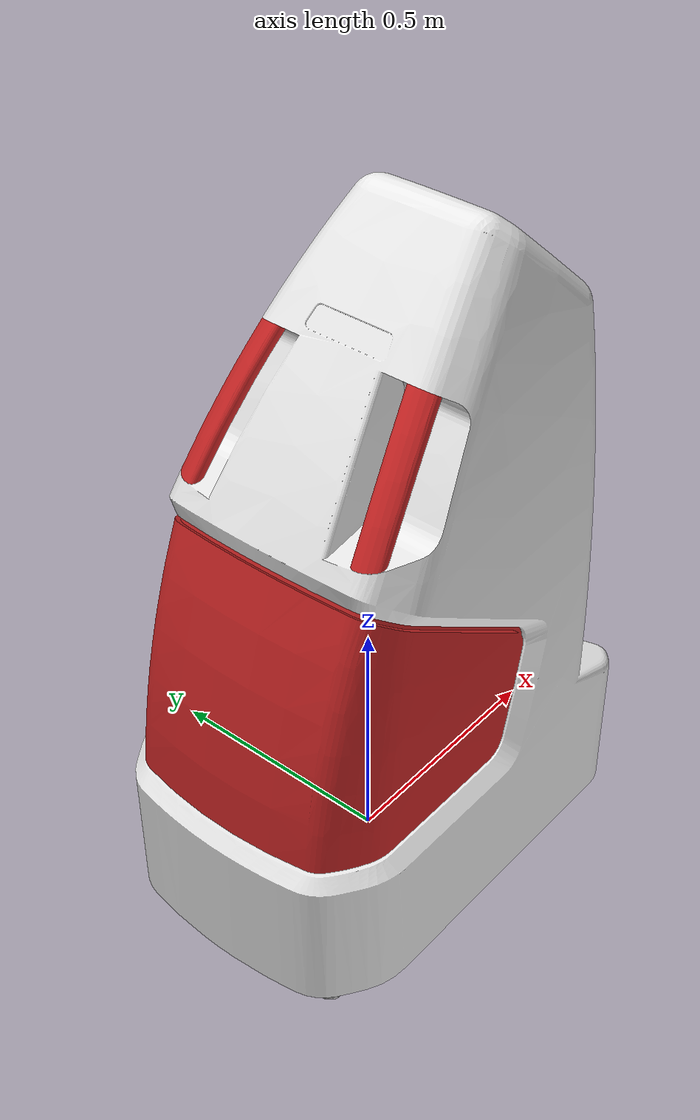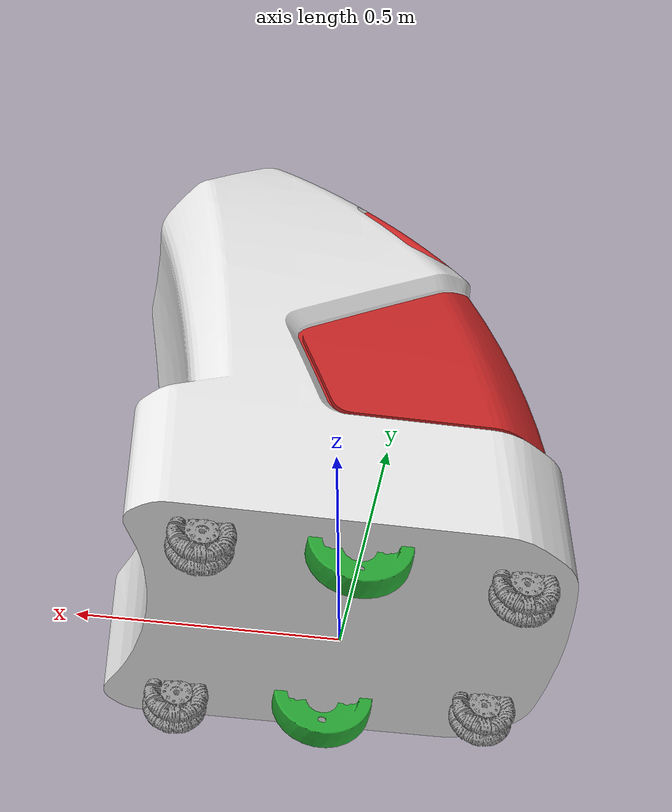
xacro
<?xml version="1.0"?>
<robot xmlns:xacro="http://www.ros.org/wiki/xacro">

<!-- links -->
    <link name="base_footprint"/>

    <link name="platform_link">
        <visual>
            <origin xyz="0 0 0" rpy="0 0 0"/>
            <geometry>
                <mesh filename="file://$(find my_robot_description)/meshes/platform.stl" scale="0.001 0.001 0.001"/>
            </geometry>
            <material name="white"/>
        </visual>

        <inertial>
            <origin xyz="0 0 0.7" rpy="0 0 0"/>
            <mass value="365"/>
            <inertia ixx="60.048910"  ixy="0"  ixz="0" iyy="65.952215" iyz="0" izz="24.168592" />

        </inertial>

        <collision>
            <geometry>
                <box size="0.9 0.6 1.4" />
            </geometry>
            <origin xyz="0 0 0.7" rpy="0 0 0"/>
        </collision>
    </link>

    <link name="service_cover_link">
        <visual>
            <origin xyz="0 0 0" rpy="0 0 0"/>
            <geometry>
                <mesh filename="file://$(find my_robot_description)/meshes/service_cover.stl" scale="0.001 0.001 0.001"/>
            </geometry>
            <material name="red"/>
        </visual>

        <inertial>
            <origin xyz="0 0 -0.1" rpy="0 0 0"/>
            <mass value="5"/>
            <inertia ixx="0.196649"  ixy="0.000008"  ixz="-0.005308" iyy="0.166915" iyz="-0.000002" izz="0.193389" />
        </inertial>

        <collision>
            <geometry>
                <box size="0.01 0.01 0.01" />
            </geometry>
            <origin xyz="0 0 -0.005" rpy="0 0 0"/>

        </collision>
    </link>

     <!-- wheels
         DIFFERENTIAL drive wheels
            ${pi / 2.0}=1.5708=90deg -->
            <link name="desni_kotac_link">
                <visual>
                    <origin xyz="0 0 0" rpy="0 ${pi / 2.0} 0" />
                    <geometry>
                        <mesh filename="file://$(find my_robot_description)/meshes/drive_wheel.stl" scale="0.001 0.001 0.001"/>
                    </geometry>
                    <material name="green" />
                </visual>
                <inertial>
                    <origin xyz="0 0 0" rpy="0 ${pi / 2.0} 0"/>
                    <mass value="2"/>
                    <inertia ixx="0.014021"  ixy="0"  ixz="0" iyy="0.007364" iyz="0" izz="0.007364"/>
                </inertial>

                <collision>
                    <geometry>
                        <cylinder radius="0.1" length="0.06"/>
                    </geometry>
                    <origin xyz="0 0 0" rpy="0 0 0"/>
                </collision>
            </link>

            <link name="lijevi_kotac_link">
                <visual>
                    <origin xyz="0 0 0" rpy="0 ${pi / 2.0} 0" />
                    <geometry>
                        <mesh filename="file://$(find my_robot_description)/meshes/drive_wheel.stl" scale="0.001 0.001 0.001"/>
                    </geometry>
                    <material name="green" />
                </visual>
                <inertial>
                    <origin xyz="0 0 0" rpy="0 ${pi / 2.0} 0"/>
                    <mass value="2"/>
                    <inertia ixx="0.014021"  ixy="0"  ixz="0" iyy="0.007364" iyz="0" izz="0.007364"/>
                </inertial>

                <collision>
                    <geometry>
                        <cylinder radius="0.1" length="0.06"/>
                    </geometry>
                    <origin xyz="0 0 0" rpy="0 0 0"/>
                </collision>
            </link>

        <!-- omni wheel    p-forward d-right l-left z-back  -->

            <!-- xacro:macro function that reduces repetition of the same code
                        it is possible of call macros inside the macros-->
            <xacro:macro name="omni_whell" params="name" >
                <link name="${name}">
                    <visual>
                        <geometry>
                            <mesh filename="file://$(find my_robot_description)/meshes/ommni_suport_wheel.stl" scale="0.001 0.001 0.001"/>
                        </geometry>
                        <origin xyz="0 -0.016 0" rpy="${pi / 2.0} 0 0" />
                        <material name="grey" />
                    </visual>

                    <inertial>
                        <origin xyz="0 -0.016 0" rpy="${pi / 2.0} 0 0" />
                        <mass value="0.5"/>
                        <inertia ixx="0.000638"  ixy="0"  ixz="0" iyy="0.000638" iyz="0" izz="0.007364" />
                    </inertial>

                    <collision>
                        <geometry>
                            <cylinder radius="0.065" length="0.08"/>
                        </geometry>
                        <origin xyz="0 -0.016 0" rpy="${pi / 2.0} 0 0" />
                    </collision>
                </link>
            </xacro:macro>

            <xacro:omni_whell name="omni_pd_link"/>
            <xacro:omni_whell name="omni_pl_link"/>
            <xacro:omni_whell name="omni_zd_link"/>
            <xacro:omni_whell name="omni_zl_link"/>

            <!-- without using the macro function we have a lot of repetition of the same code-->

<!-- JOINT CONFIGURATION -->

    <joint name="footprint_platforma_joint" type="fixed">
        <parent link="base_footprint"/>
        <child link="platform_link"/>
        <origin xyz="0 0 0" rpy="0 0 0"/>
    </joint>

    <joint name="platforma_cover_joint" type="fixed">
        <parent link="platform_link"/>
        <child link="service_cover_link"/>
        <origin xyz="0 0 0" rpy="0 0 0"/>
    </joint>

    <!-- diff drive joint -->

        <joint name="platforma_right_wheel_joint" type="continuous">
            <parent link="platform_link"/>
            <child link="desni_kotac_link" />
            <origin xyz="0 -0.2239445 0.03" rpy="${pi / 2.0} 0 0" />
            <axis xyz="0 0 1" />
        </joint>

        <joint name="platforma_left_wheel_joint" type="continuous">
            <parent link="platform_link"/>
            <child link="lijevi_kotac_link" />
            <origin xyz="0 0.2239445 0.03" rpy="${pi / 2.0} 0 0" />
            <axis xyz="0 0 1" />
        </joint>
    <!-- omni joint also posible with marco functions-->

        <xacro:macro name="omni_joint" params="name position_x position_y">
            <joint name="platforma_omni_${name}_joint" type="fixed">
                <parent link="platform_link"/>
                <child link="omni_${name}_link" />
                <origin xyz="${position_x} ${position_y} 0" rpy="0 0 0" />
                <axis xyz="0 1 0" />
            </joint>
        </xacro:macro>

        <xacro:omni_joint name="pd" position_x="0.292" position_y="-0.232" />
        <xacro:omni_joint name="pl" position_x="0.292" position_y="0.232" />
        <xacro:omni_joint name="zd" position_x="-0.315" position_y="-0.182" />
        <xacro:omni_joint name="zl" position_x="-0.315" position_y="0.182" />

</robot>
